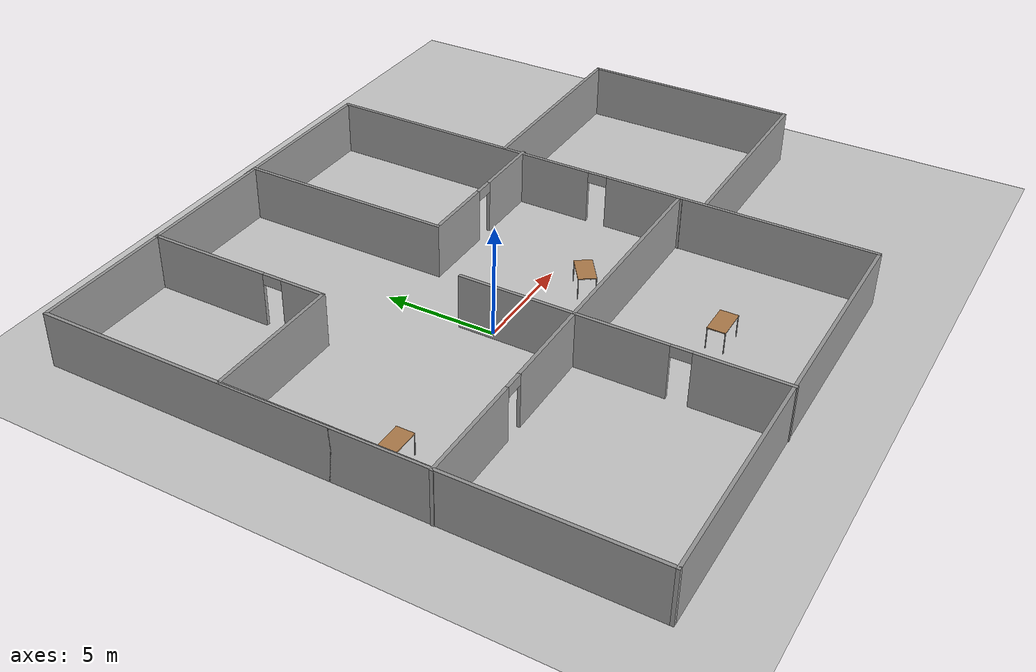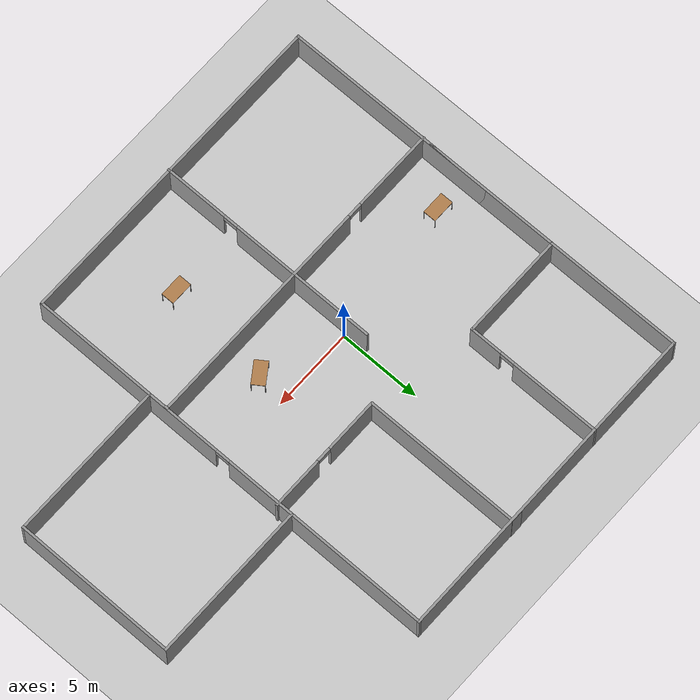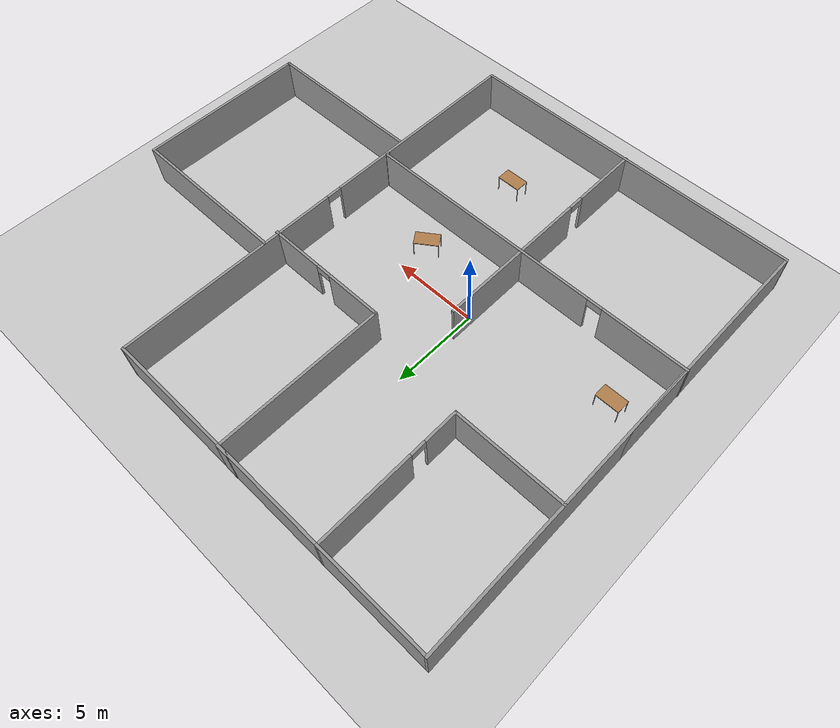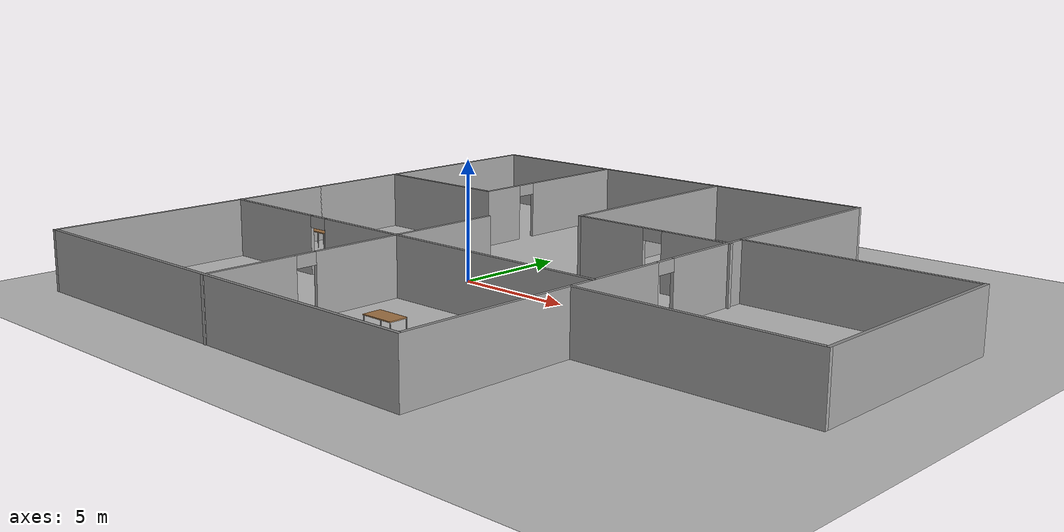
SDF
<sdf version="1.6">
 <world name="default">
  <model name="ground_plane">
   <static>1</static>
   <link name="link">
    <collision name="collision">
     <geometry><plane><normal>0 0 1</normal><size>100 100</size></plane></geometry>
     <surface><friction><ode><mu>100</mu><mu2>50</mu2></ode></friction></surface>
    </collision>
    <visual name="visual">
     <cast_shadows>0</cast_shadows>
     <geometry><plane><normal>0 0 1</normal><size>100 100</size></plane></geometry>
     <material>
      <script><uri>file://media/materials/scripts/gazebo.material</uri><name>Gazebo/Grey</name></script>
     </material>
    </visual>
   </link>
  </model>
  <model name="table">
   <static>0</static>
   <link name="link">
    <collision name="surface">
     <pose>0 0 1 0 -0 0</pose>
     <geometry><box><size>1.5 0.8 0.03</size></box></geometry>
     <surface><friction><ode><mu>0.6</mu><mu2>0.6</mu2></ode></friction></surface>
    </collision>
    <visual name="visual1">
     <pose>0 0 1 0 -0 0</pose>
     <geometry><box><size>1.4 0.8 0.04</size></box></geometry>
     <material>
      <script><uri>file://media/materials/scripts/gazebo.material</uri><name>Gazebo/Wood</name></script>
     </material>
    </visual>
    <collision name="front_left_leg">
     <pose>0.68 0.38 0.5 0 -0 0</pose>
     <geometry><cylinder><radius>0.02</radius><length>1</length></cylinder></geometry>
    </collision>
    <visual name="front_left_leg">
     <pose>0.68 0.38 0.5 0 -0 0</pose>
     <geometry><cylinder><radius>0.02</radius><length>1</length></cylinder></geometry>
     <material>
      <script><uri>file://media/materials/scripts/gazebo.material</uri><name>Gazebo/Grey</name></script>
     </material>
    </visual>
    <collision name="front_right_leg">
     <pose>0.68 -0.38 0.5 0 -0 0</pose>
     <geometry><cylinder><radius>0.02</radius><length>1</length></cylinder></geometry>
    </collision>
    <visual name="front_right_leg">
     <pose>0.68 -0.38 0.5 0 -0 0</pose>
     <geometry><cylinder><radius>0.02</radius><length>1</length></cylinder></geometry>
     <material>
      <script><uri>file://media/materials/scripts/gazebo.material</uri><name>Gazebo/Grey</name></script>
     </material>
    </visual>
    <collision name="back_right_leg">
     <pose>-0.68 -0.38 0.5 0 -0 0</pose>
     <geometry><cylinder><radius>0.02</radius><length>1</length></cylinder></geometry>
    </collision>
    <visual name="back_right_leg">
     <pose>-0.68 -0.38 0.5 0 -0 0</pose>
     <geometry><cylinder><radius>0.02</radius><length>1</length></cylinder></geometry>
     <material>
      <script><uri>file://media/materials/scripts/gazebo.material</uri><name>Gazebo/Grey</name></script>
     </material>
    </visual>
    <collision name="back_left_leg">
     <pose>-0.68 0.38 0.5 0 -0 0</pose>
     <geometry><cylinder><radius>0.02</radius><length>1</length></cylinder></geometry>
    </collision>
    <visual name="back_left_leg">
     <pose>-0.68 0.38 0.5 0 -0 0</pose>
     <geometry><cylinder><radius>0.02</radius><length>1</length></cylinder></geometry>
     <material>
      <script><uri>file://media/materials/scripts/gazebo.material</uri><name>Gazebo/Grey</name></script>
     </material>
    </visual>
    <inertial>
     <inertia><ixx>1</ixx><ixy>0</ixy><ixz>0</ixz><iyy>1</iyy><iyz>0</iyz><izz>1</izz></inertia>
     <mass>1</mass>
    </inertial>
   </link>
   <pose>-8.45641 -0.835319 -9e-06 0 -0 0</pose>
  </model>
  <model name="table_0">
   <static>0</static>
   <link name="link">
    <collision name="surface">
     <pose>0 0 1 0 -0 0</pose>
     <geometry><box><size>1.5 0.8 0.03</size></box></geometry>
     <surface><friction><ode><mu>0.6</mu><mu2>0.6</mu2></ode></friction></surface>
    </collision>
    <visual name="visual1">
     <pose>0 0 1 0 -0 0</pose>
     <geometry><box><size>1.4 0.8 0.04</size></box></geometry>
     <material>
      <script><uri>file://media/materials/scripts/gazebo.material</uri><name>Gazebo/Wood</name></script>
     </material>
    </visual>
    <collision name="front_left_leg">
     <pose>0.68 0.38 0.5 0 -0 0</pose>
     <geometry><cylinder><radius>0.02</radius><length>1</length></cylinder></geometry>
    </collision>
    <visual name="front_left_leg">
     <pose>0.68 0.38 0.5 0 -0 0</pose>
     <geometry><cylinder><radius>0.02</radius><length>1</length></cylinder></geometry>
     <material>
      <script><uri>file://media/materials/scripts/gazebo.material</uri><name>Gazebo/Grey</name></script>
     </material>
    </visual>
    <collision name="front_right_leg">
     <pose>0.68 -0.38 0.5 0 -0 0</pose>
     <geometry><cylinder><radius>0.02</radius><length>1</length></cylinder></geometry>
    </collision>
    <visual name="front_right_leg">
     <pose>0.68 -0.38 0.5 0 -0 0</pose>
     <geometry><cylinder><radius>0.02</radius><length>1</length></cylinder></geometry>
     <material>
      <script><uri>file://media/materials/scripts/gazebo.material</uri><name>Gazebo/Grey</name></script>
     </material>
    </visual>
    <collision name="back_right_leg">
     <pose>-0.68 -0.38 0.5 0 -0 0</pose>
     <geometry><cylinder><radius>0.02</radius><length>1</length></cylinder></geometry>
    </collision>
    <visual name="back_right_leg">
     <pose>-0.68 -0.38 0.5 0 -0 0</pose>
     <geometry><cylinder><radius>0.02</radius><length>1</length></cylinder></geometry>
     <material>
      <script><uri>file://media/materials/scripts/gazebo.material</uri><name>Gazebo/Grey</name></script>
     </material>
    </visual>
    <collision name="back_left_leg">
     <pose>-0.68 0.38 0.5 0 -0 0</pose>
     <geometry><cylinder><radius>0.02</radius><length>1</length></cylinder></geometry>
    </collision>
    <visual name="back_left_leg">
     <pose>-0.68 0.38 0.5 0 -0 0</pose>
     <geometry><cylinder><radius>0.02</radius><length>1</length></cylinder></geometry>
     <material>
      <script><uri>file://media/materials/scripts/gazebo.material</uri><name>Gazebo/Grey</name></script>
     </material>
    </visual>
    <inertial>
     <inertia><ixx>1</ixx><ixy>0</ixy><ixz>0</ixz><iyy>1</iyy><iyz>0</iyz><izz>1</izz></inertia>
     <mass>1</mass>
    </inertial>
   </link>
   <pose>4.11112 -8.08132 -9e-06 0 -0 0</pose>
  </model>
  <model name="table_1">
   <static>0</static>
   <link name="link">
    <collision name="surface">
     <pose>0 0 1 0 -0 0</pose>
     <geometry><box><size>1.5 0.8 0.03</size></box></geometry>
     <surface><friction><ode><mu>0.6</mu><mu2>0.6</mu2></ode></friction></surface>
    </collision>
    <visual name="visual1">
     <pose>0 0 1 0 -0 0</pose>
     <geometry><box><size>1.4 0.8 0.04</size></box></geometry>
     <material>
      <script><uri>file://media/materials/scripts/gazebo.material</uri><name>Gazebo/Wood</name></script>
     </material>
    </visual>
    <collision name="front_left_leg">
     <pose>0.68 0.38 0.5 0 -0 0</pose>
     <geometry><cylinder><radius>0.02</radius><length>1</length></cylinder></geometry>
    </collision>
    <visual name="front_left_leg">
     <pose>0.68 0.38 0.5 0 -0 0</pose>
     <geometry><cylinder><radius>0.02</radius><length>1</length></cylinder></geometry>
     <material>
      <script><uri>file://media/materials/scripts/gazebo.material</uri><name>Gazebo/Grey</name></script>
     </material>
    </visual>
    <collision name="front_right_leg">
     <pose>0.68 -0.38 0.5 0 -0 0</pose>
     <geometry><cylinder><radius>0.02</radius><length>1</length></cylinder></geometry>
    </collision>
    <visual name="front_right_leg">
     <pose>0.68 -0.38 0.5 0 -0 0</pose>
     <geometry><cylinder><radius>0.02</radius><length>1</length></cylinder></geometry>
     <material>
      <script><uri>file://media/materials/scripts/gazebo.material</uri><name>Gazebo/Grey</name></script>
     </material>
    </visual>
    <collision name="back_right_leg">
     <pose>-0.68 -0.38 0.5 0 -0 0</pose>
     <geometry><cylinder><radius>0.02</radius><length>1</length></cylinder></geometry>
    </collision>
    <visual name="back_right_leg">
     <pose>-0.68 -0.38 0.5 0 -0 0</pose>
     <geometry><cylinder><radius>0.02</radius><length>1</length></cylinder></geometry>
     <material>
      <script><uri>file://media/materials/scripts/gazebo.material</uri><name>Gazebo/Grey</name></script>
     </material>
    </visual>
    <collision name="back_left_leg">
     <pose>-0.68 0.38 0.5 0 -0 0</pose>
     <geometry><cylinder><radius>0.02</radius><length>1</length></cylinder></geometry>
    </collision>
    <visual name="back_left_leg">
     <pose>-0.68 0.38 0.5 0 -0 0</pose>
     <geometry><cylinder><radius>0.02</radius><length>1</length></cylinder></geometry>
     <material>
      <script><uri>file://media/materials/scripts/gazebo.material</uri><name>Gazebo/Grey</name></script>
     </material>
    </visual>
    <inertial>
     <inertia><ixx>1</ixx><ixy>0</ixy><ixz>0</ixz><iyy>1</iyy><iyz>0</iyz><izz>1</izz></inertia>
     <mass>1</mass>
    </inertial>
   </link>
   <pose>4.6721 -1.71836 0 0 -0 0.603298</pose>
  </model>
  <model name="White_walls_and_doors">
   <pose>4.437 0.6178 0 0 -0 0</pose>
   <link name="Wall_18">
    <collision name="Wall_18_Collision">
     <geometry><box><size>20.25 0.15 2.5</size></box></geometry>
     <pose>0 0 1.25 0 -0 0</pose>
    </collision>
    <visual name="Wall_18_Visual">
     <pose>0 0 1.25 0 -0 0</pose>
     <geometry><box><size>20.25 0.15 2.5</size></box></geometry>
     <material>
      <script><uri>file://media/materials/scripts/gazebo.material</uri><name>Gazebo/Grey</name></script>
      <ambient>1 1 1 1</ambient>
     </material>
    </visual>
    <pose>-4.80227 -13.0434 0 0 -0 3.14159</pose>
   </link>
   <link name="Wall_19">
    <collision name="Wall_19_Collision">
     <geometry><box><size>26.25 0.15 2.5</size></box></geometry>
     <pose>0 0 1.25 0 -0 0</pose>
    </collision>
    <visual name="Wall_19_Visual">
     <pose>0 0 1.25 0 -0 0</pose>
     <geometry><box><size>26.25 0.15 2.5</size></box></geometry>
     <material>
      <script><uri>file://media/materials/scripts/gazebo.material</uri><name>Gazebo/Grey</name></script>
      <ambient>1 1 1 1</ambient>
     </material>
    </visual>
    <pose>-14.8523 0.006615 0 0 -0 1.5708</pose>
   </link>
   <link name="Wall_20">
    <collision name="Wall_20_Collision">
     <geometry><box><size>6.5 0.15 2.5</size></box></geometry>
     <pose>0 0 1.25 0 -0 0</pose>
    </collision>
    <visual name="Wall_20_Visual">
     <pose>0 0 1.25 0 -0 0</pose>
     <geometry><box><size>6.5 0.15 2.5</size></box></geometry>
     <material>
      <script><uri>file://media/materials/scripts/gazebo.material</uri><name>Gazebo/Grey</name></script>
      <ambient>1 1 1 1</ambient>
     </material>
    </visual>
    <pose>-11.6773 13.0566 0 0 -0 0</pose>
   </link>
   <link name="Wall_21">
    <pose>-8.50227 8.88162 0 0 0 -1.5708</pose>
    <visual name="Wall_21_Visual_0">
     <pose>-1.47112 0 1.25 0 -0 0</pose>
     <geometry><box><size>5.55776 0.15 2.5</size></box></geometry>
     <material>
      <script><uri>file://media/materials/scripts/gazebo.material</uri><name>Gazebo/Grey</name></script>
      <ambient>1 1 1 1</ambient>
     </material>
    </visual>
    <collision name="Wall_21_Collision_0">
     <geometry><box><size>5.55776 0.15 2.5</size></box></geometry>
     <pose>-1.47112 0 1.25 0 -0 0</pose>
    </collision>
    <visual name="Wall_21_Visual_1">
     <pose>3.22888 0 1.25 0 -0 0</pose>
     <geometry><box><size>2.04224 0.15 2.5</size></box></geometry>
     <material>
      <script><uri>file://media/materials/scripts/gazebo.material</uri><name>Gazebo/Grey</name></script>
      <ambient>1 1 1 1</ambient>
     </material>
    </visual>
    <collision name="Wall_21_Collision_1">
     <geometry><box><size>2.04224 0.15 2.5</size></box></geometry>
     <pose>3.22888 0 1.25 0 -0 0</pose>
    </collision>
    <visual name="Wall_21_Visual_2">
     <pose>1.75776 0 2.25 0 -0 0</pose>
     <geometry><box><size>0.9 0.15 0.5</size></box></geometry>
     <material>
      <script><uri>file://media/materials/scripts/gazebo.material</uri><name>Gazebo/Grey</name></script>
      <ambient>1 1 1 1</ambient>
     </material>
    </visual>
    <collision name="Wall_21_Collision_2">
     <geometry><box><size>0.9 0.15 0.5</size></box></geometry>
     <pose>1.75776 0 2.25 0 -0 0</pose>
    </collision>
   </link>
   <link name="Wall_22">
    <collision name="Wall_22_Collision">
     <geometry><box><size>6.5 0.15 2.5</size></box></geometry>
     <pose>0 0 1.25 0 -0 0</pose>
    </collision>
    <visual name="Wall_22_Visual">
     <pose>0 0 1.25 0 -0 0</pose>
     <geometry><box><size>6.5 0.15 2.5</size></box></geometry>
     <material>
      <script><uri>file://media/materials/scripts/gazebo.material</uri><name>Gazebo/Grey</name></script>
      <ambient>1 1 1 1</ambient>
     </material>
    </visual>
    <pose>-11.6773 4.70662 0 0 -0 3.14159</pose>
   </link>
   <link name="Wall_23">
    <collision name="Wall_23_Collision">
     <geometry><box><size>9 0.15 2.5</size></box></geometry>
     <pose>0 0 1.25 0 -0 0</pose>
    </collision>
    <visual name="Wall_23_Visual">
     <pose>0 0 1.25 0 -0 0</pose>
     <geometry><box><size>9 0.15 2.5</size></box></geometry>
     <material>
      <script><uri>file://media/materials/scripts/gazebo.material</uri><name>Gazebo/Grey</name></script>
      <ambient>1 1 1 1</ambient>
     </material>
    </visual>
    <pose>-14.8523 0.281615 0 0 0 -1.5708</pose>
   </link>
   <link name="Wall_31">
    <pose>5.24773 0.006615 0 0 -0 1.5708</pose>
    <visual name="Wall_31_Visual_0">
     <pose>-6.97193 0 1.25 0 -0 0</pose>
     <geometry><box><size>12.3061 0.15 2.5</size></box></geometry>
     <material>
      <script><uri>file://media/materials/scripts/gazebo.material</uri><name>Gazebo/Grey</name></script>
      <ambient>1 1 1 1</ambient>
     </material>
    </visual>
    <collision name="Wall_31_Collision_0">
     <geometry><box><size>12.3061 0.15 2.5</size></box></geometry>
     <pose>-6.97193 0 1.25 0 -0 0</pose>
    </collision>
    <visual name="Wall_31_Visual_1">
     <pose>6.60307 0 1.25 0 -0 0</pose>
     <geometry><box><size>13.0439 0.15 2.5</size></box></geometry>
     <material>
      <script><uri>file://media/materials/scripts/gazebo.material</uri><name>Gazebo/Grey</name></script>
      <ambient>1 1 1 1</ambient>
     </material>
    </visual>
    <collision name="Wall_31_Collision_1">
     <geometry><box><size>13.0439 0.15 2.5</size></box></geometry>
     <pose>6.60307 0 1.25 0 -0 0</pose>
    </collision>
    <visual name="Wall_31_Visual_2">
     <pose>-0.368859 0 2.25 0 -0 0</pose>
     <geometry><box><size>0.9 0.15 0.5</size></box></geometry>
     <material>
      <script><uri>file://media/materials/scripts/gazebo.material</uri><name>Gazebo/Grey</name></script>
      <ambient>1 1 1 1</ambient>
     </material>
    </visual>
    <collision name="Wall_31_Collision_2">
     <geometry><box><size>0.9 0.15 0.5</size></box></geometry>
     <pose>-0.368859 0 2.25 0 -0 0</pose>
    </collision>
   </link>
   <link name="Wall_33">
    <collision name="Wall_33_Collision">
     <geometry><box><size>13.9 0.15 2.5</size></box></geometry>
     <pose>0 0 1.25 0 -0 0</pose>
    </collision>
    <visual name="Wall_33_Visual">
     <pose>0 0 1.25 0 -0 0</pose>
     <geometry><box><size>13.9 0.15 2.5</size></box></geometry>
     <material>
      <script><uri>file://media/materials/scripts/gazebo.material</uri><name>Gazebo/Grey</name></script>
      <ambient>1 1 1 1</ambient>
     </material>
    </visual>
    <pose>-1.62727 13.0566 0 0 -0 0</pose>
   </link>
   <link name="Wall_35">
    <collision name="Wall_35_Collision">
     <geometry><box><size>0.75 0.15 2.5</size></box></geometry>
     <pose>0 0 1.25 0 -0 0</pose>
    </collision>
    <visual name="Wall_35_Visual">
     <pose>0 0 1.25 0 -0 0</pose>
     <geometry><box><size>0.75 0.15 2.5</size></box></geometry>
     <material>
      <script><uri>file://media/materials/scripts/gazebo.material</uri><name>Gazebo/Grey</name></script>
      <ambient>1 1 1 1</ambient>
     </material>
    </visual>
    <pose>-2.2932 13.0776 0 0 -0 0</pose>
   </link>
   <link name="Wall_36">
    <collision name="Wall_36_Collision">
     <geometry><box><size>9.75 0.15 2.5</size></box></geometry>
     <pose>0 0 1.25 0 -0 0</pose>
    </collision>
    <visual name="Wall_36_Visual">
     <pose>0 0 1.25 0 -0 0</pose>
     <geometry><box><size>9.75 0.15 2.5</size></box></geometry>
     <material>
      <script><uri>file://media/materials/scripts/gazebo.material</uri><name>Gazebo/Grey</name></script>
      <ambient>1 1 1 1</ambient>
     </material>
    </visual>
    <pose>-1.9932 8.27759 0 0 0 -1.5708</pose>
   </link>
   <link name="Wall_37">
    <pose>1.6818 3.47759 0 0 -0 0</pose>
    <visual name="Wall_37_Visual_0">
     <pose>-2.06159 0 1.25 0 -0 0</pose>
     <geometry><box><size>3.37682 0.15 2.5</size></box></geometry>
     <material>
      <script><uri>file://media/materials/scripts/gazebo.material</uri><name>Gazebo/Grey</name></script>
      <ambient>1 1 1 1</ambient>
     </material>
    </visual>
    <collision name="Wall_37_Collision_0">
     <geometry><box><size>3.37682 0.15 2.5</size></box></geometry>
     <pose>-2.06159 0 1.25 0 -0 0</pose>
    </collision>
    <visual name="Wall_37_Visual_1">
     <pose>2.13841 0 1.25 0 -0 0</pose>
     <geometry><box><size>3.22318 0.15 2.5</size></box></geometry>
     <material>
      <script><uri>file://media/materials/scripts/gazebo.material</uri><name>Gazebo/Grey</name></script>
      <ambient>1 1 1 1</ambient>
     </material>
    </visual>
    <collision name="Wall_37_Collision_1">
     <geometry><box><size>3.22318 0.15 2.5</size></box></geometry>
     <pose>2.13841 0 1.25 0 -0 0</pose>
    </collision>
    <visual name="Wall_37_Visual_2">
     <pose>0.076818 0 2.25 0 -0 0</pose>
     <geometry><box><size>0.9 0.15 0.5</size></box></geometry>
     <material>
      <script><uri>file://media/materials/scripts/gazebo.material</uri><name>Gazebo/Grey</name></script>
      <ambient>1 1 1 1</ambient>
     </material>
    </visual>
    <collision name="Wall_37_Collision_2">
     <geometry><box><size>0.9 0.15 0.5</size></box></geometry>
     <pose>0.076818 0 2.25 0 -0 0</pose>
    </collision>
   </link>
   <link name="Wall_39">
    <collision name="Wall_39_Collision">
     <geometry><box><size>9.75 0.15 2.5</size></box></geometry>
     <pose>0 0 1.25 0 -0 0</pose>
    </collision>
    <visual name="Wall_39_Visual">
     <pose>0 0 1.25 0 -0 0</pose>
     <geometry><box><size>9.75 0.15 2.5</size></box></geometry>
     <material>
      <script><uri>file://media/materials/scripts/gazebo.material</uri><name>Gazebo/Grey</name></script>
      <ambient>1 1 1 1</ambient>
     </material>
    </visual>
    <pose>10.0814 4.38553 0 0 -0 0</pose>
   </link>
   <link name="Wall_40">
    <collision name="Wall_40_Collision">
     <geometry><box><size>10 0.15 2.5</size></box></geometry>
     <pose>0 0 1.25 0 -0 0</pose>
    </collision>
    <visual name="Wall_40_Visual">
     <pose>0 0 1.25 0 -0 0</pose>
     <geometry><box><size>10 0.15 2.5</size></box></geometry>
     <material>
      <script><uri>file://media/materials/scripts/gazebo.material</uri><name>Gazebo/Grey</name></script>
      <ambient>1 1 1 1</ambient>
     </material>
    </visual>
    <pose>14.8814 -0.539473 0 0 0 -1.5708</pose>
   </link>
   <link name="Wall_41">
    <collision name="Wall_41_Collision">
     <geometry><box><size>9.75 0.15 2.5</size></box></geometry>
     <pose>0 0 1.25 0 -0 0</pose>
    </collision>
    <visual name="Wall_41_Visual">
     <pose>0 0 1.25 0 -0 0</pose>
     <geometry><box><size>9.75 0.15 2.5</size></box></geometry>
     <material>
      <script><uri>file://media/materials/scripts/gazebo.material</uri><name>Gazebo/Grey</name></script>
      <ambient>1 1 1 1</ambient>
     </material>
    </visual>
    <pose>10.0814 -5.46447 0 0 -0 3.14159</pose>
   </link>
   <link name="Wall_43">
    <collision name="Wall_43_Collision">
     <geometry><box><size>0.25 0.15 2.5</size></box></geometry>
     <pose>0 0 1.25 0 -0 0</pose>
    </collision>
    <visual name="Wall_43_Visual">
     <pose>0 0 1.25 0 -0 0</pose>
     <geometry><box><size>0.25 0.15 2.5</size></box></geometry>
     <material>
      <script><uri>file://media/materials/scripts/gazebo.material</uri><name>Gazebo/Grey</name></script>
      <ambient>1 1 1 1</ambient>
     </material>
    </visual>
    <pose>5.21856 -4.31567 0 0 -0 1.5708</pose>
   </link>
   <link name="Wall_44">
    <pose>-4.83144 -4.26567 0 0 -0 3.14159</pose>
    <visual name="Wall_44_Visual_0">
     <pose>-2.9883 0 1.25 0 -0 0</pose>
     <geometry><box><size>14.2734 0.15 2.5</size></box></geometry>
     <material>
      <script><uri>file://media/materials/scripts/gazebo.material</uri><name>Gazebo/Grey</name></script>
      <ambient>1 1 1 1</ambient>
     </material>
    </visual>
    <collision name="Wall_44_Collision_0">
     <geometry><box><size>14.2734 0.15 2.5</size></box></geometry>
     <pose>-2.9883 0 1.25 0 -0 0</pose>
    </collision>
    <visual name="Wall_44_Visual_1">
     <pose>7.5867 0 1.25 0 -0 0</pose>
     <geometry><box><size>5.07659 0.15 2.5</size></box></geometry>
     <material>
      <script><uri>file://media/materials/scripts/gazebo.material</uri><name>Gazebo/Grey</name></script>
      <ambient>1 1 1 1</ambient>
     </material>
    </visual>
    <collision name="Wall_44_Collision_1">
     <geometry><box><size>5.07659 0.15 2.5</size></box></geometry>
     <pose>7.5867 0 1.25 0 -0 0</pose>
    </collision>
    <visual name="Wall_44_Visual_2">
     <pose>4.59841 0 2.25 0 -0 0</pose>
     <geometry><box><size>0.9 0.15 0.5</size></box></geometry>
     <material>
      <script><uri>file://media/materials/scripts/gazebo.material</uri><name>Gazebo/Grey</name></script>
      <ambient>1 1 1 1</ambient>
     </material>
    </visual>
    <collision name="Wall_44_Collision_2">
     <geometry><box><size>0.9 0.15 0.5</size></box></geometry>
     <pose>4.59841 0 2.25 0 -0 0</pose>
    </collision>
   </link>
   <link name="Wall_47">
    <pose>-4.66563 -6.15259 0 0 -0 1.5708</pose>
    <visual name="Wall_47_Visual_0">
     <pose>-5.00007 0 1.25 0 -0 0</pose>
     <geometry><box><size>3.99986 0.15 2.5</size></box></geometry>
     <material>
      <script><uri>file://media/materials/scripts/gazebo.material</uri><name>Gazebo/Grey</name></script>
      <ambient>1 1 1 1</ambient>
     </material>
    </visual>
    <collision name="Wall_47_Collision_0">
     <geometry><box><size>3.99986 0.15 2.5</size></box></geometry>
     <pose>-5.00007 0 1.25 0 -0 0</pose>
    </collision>
    <visual name="Wall_47_Visual_1">
     <pose>2.44993 0 1.25 0 -0 0</pose>
     <geometry><box><size>9.10014 0.15 2.5</size></box></geometry>
     <material>
      <script><uri>file://media/materials/scripts/gazebo.material</uri><name>Gazebo/Grey</name></script>
      <ambient>1 1 1 1</ambient>
     </material>
    </visual>
    <collision name="Wall_47_Collision_1">
     <geometry><box><size>9.10014 0.15 2.5</size></box></geometry>
     <pose>2.44993 0 1.25 0 -0 0</pose>
    </collision>
    <visual name="Wall_47_Visual_2">
     <pose>-2.55014 0 2.25 0 -0 0</pose>
     <geometry><box><size>0.9 0.15 0.5</size></box></geometry>
     <material>
      <script><uri>file://media/materials/scripts/gazebo.material</uri><name>Gazebo/Grey</name></script>
      <ambient>1 1 1 1</ambient>
     </material>
    </visual>
    <collision name="Wall_47_Collision_2">
     <geometry><box><size>0.9 0.15 0.5</size></box></geometry>
     <pose>-2.55014 0 2.25 0 -0 0</pose>
    </collision>
   </link>
   <static>1</static>
  </model>
 </world>
</sdf>
